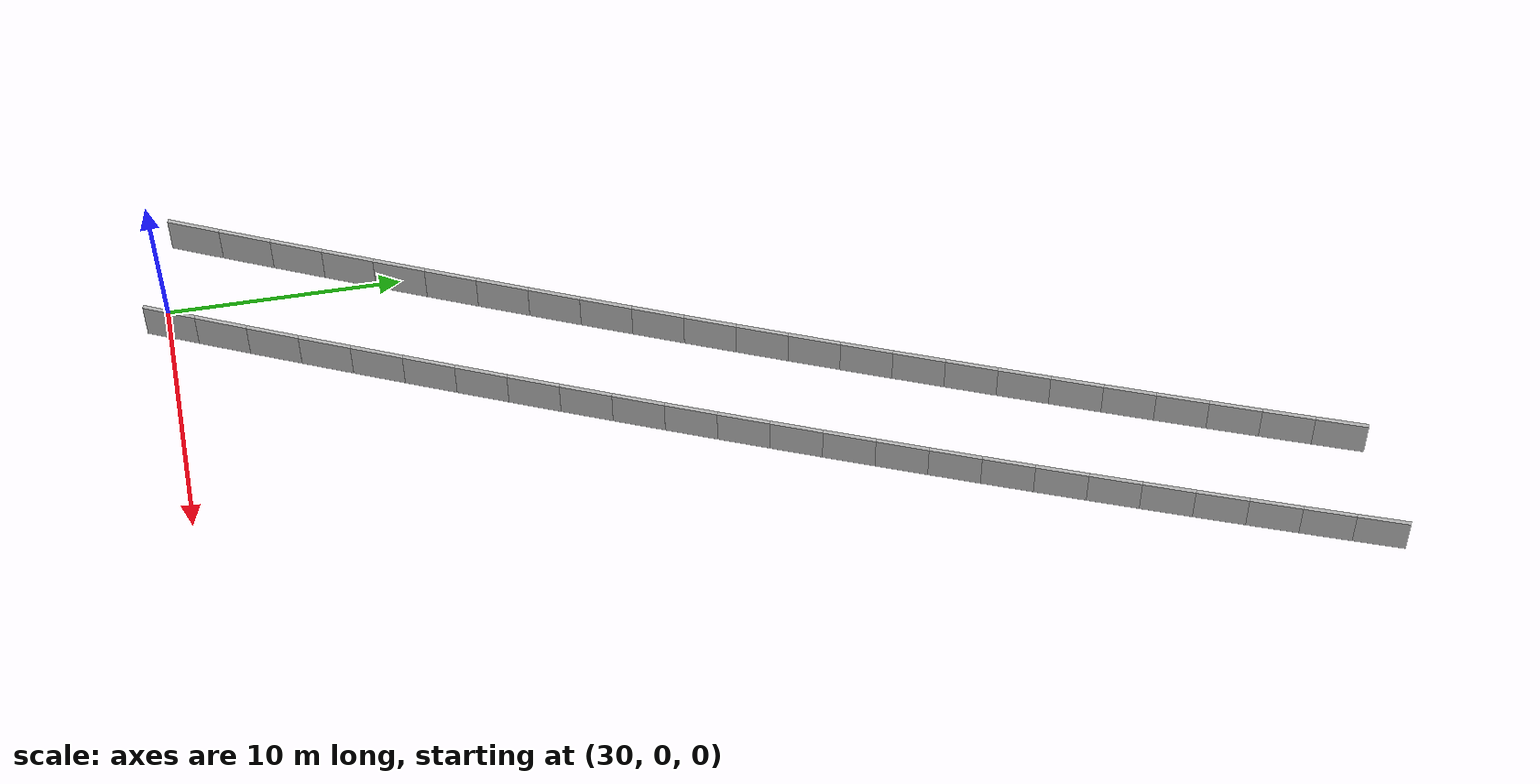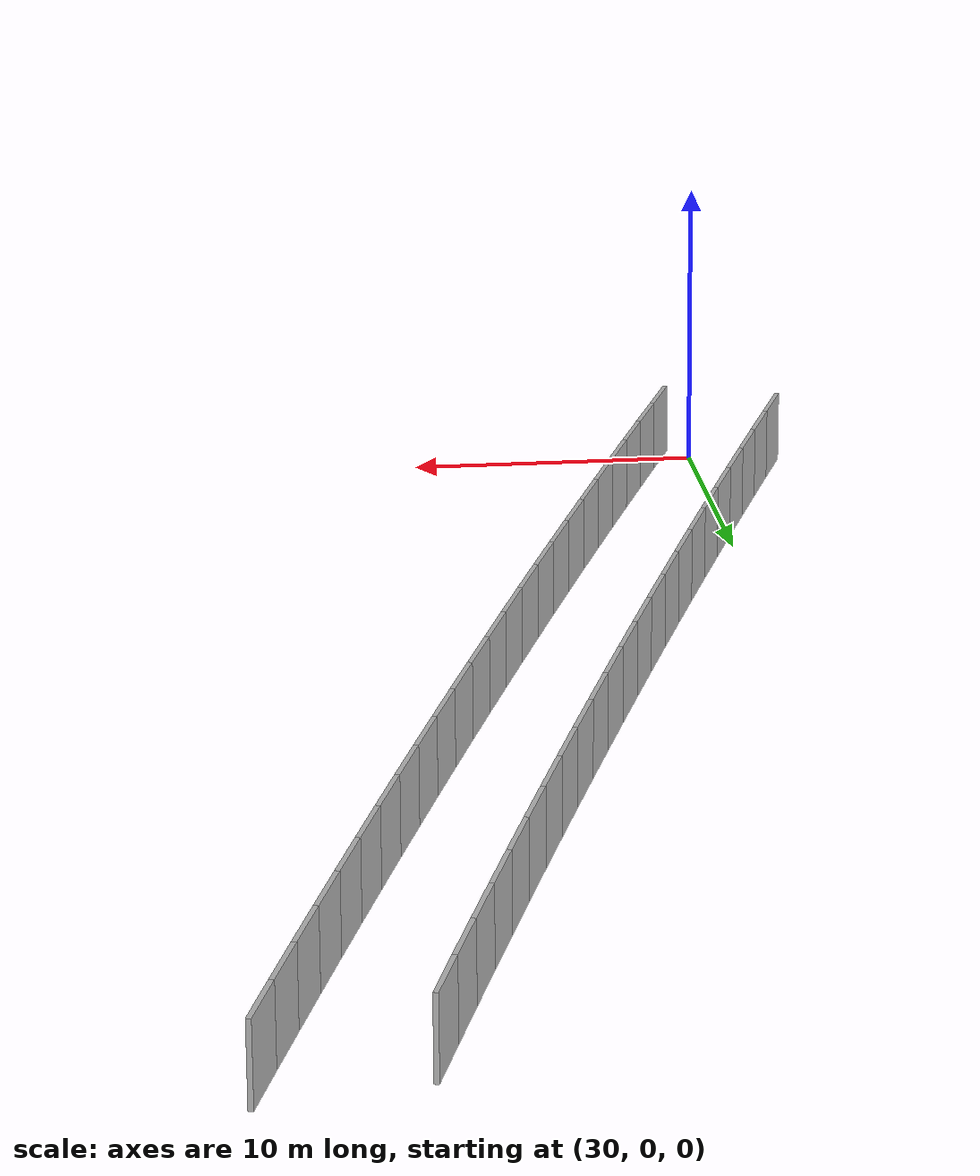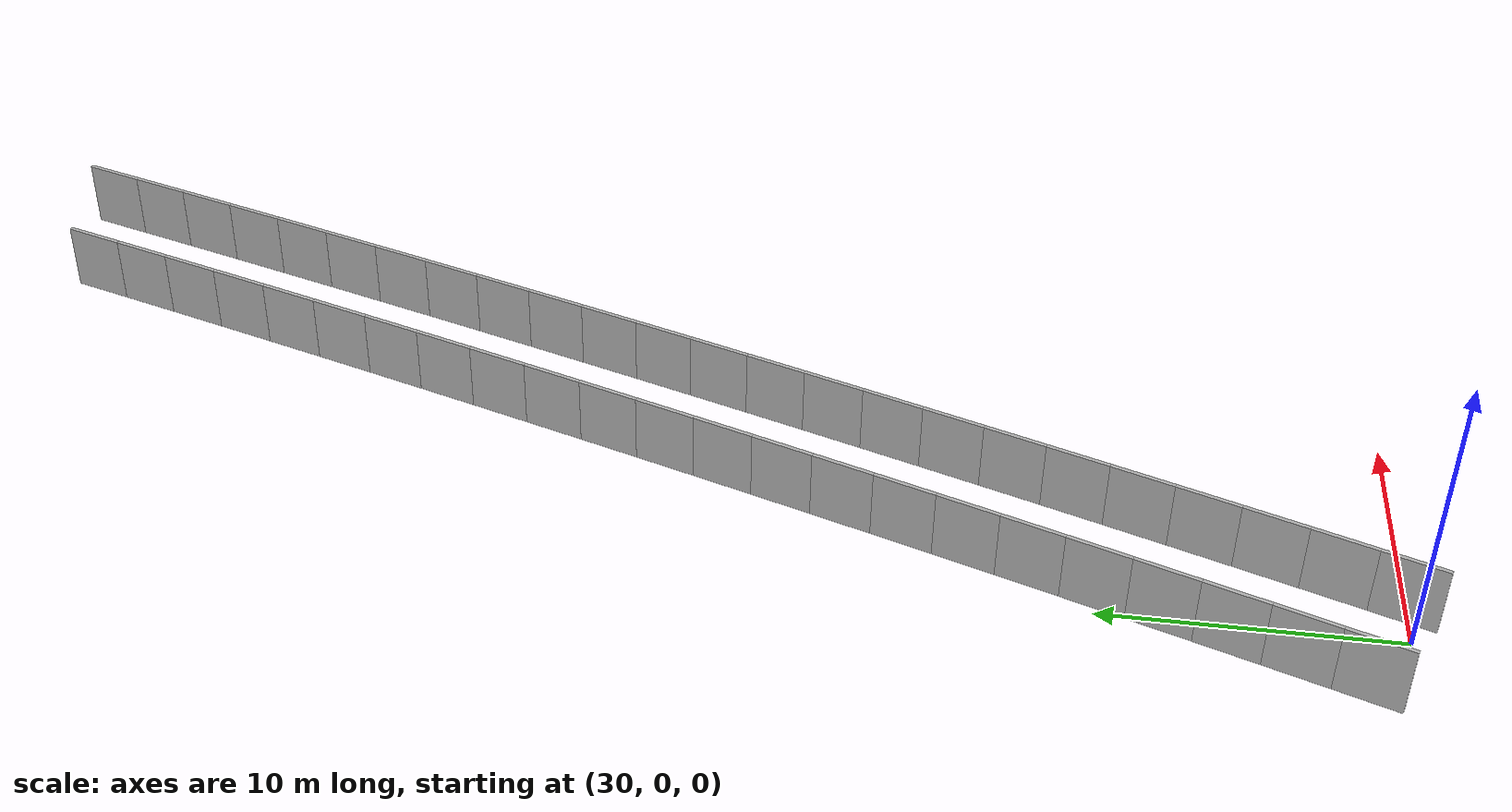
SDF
<?xml version="1.0" ?>
<sdf version="1.6">
  <model name="sps_4518">
    <pose frame="">0 0 0 0 -0 0</pose>
    <static>1</static>
    <self_collide>0</self_collide>
    <allow_auto_disable>0</allow_auto_disable>
    <link name="Wall4395">
      <kinematic>0</kinematic>
      <gravity>1</gravity>
      <self_collide>0</self_collide>
      <collision name="collision">
        <geometry>
          <box>
            <size>2.25456 0.15 2.5</size>
          </box>
        </geometry>
        <pose frame="">0 0 0 0 -0 0</pose>
      </collision>
      <visual name="visual">
        <geometry>
          <box>
            <size>2.25456 0.15 2.5</size>
          </box>
        </geometry>
        <pose frame="">0 0 0 0 -0 0</pose>
        <cast_shadows>1</cast_shadows>
        <transparency>0.0</transparency>
      </visual>
      <pose frame="">31.1479 0.140304 1.25 0 -0 1.20928</pose>
    </link>
    <link name="Wall4396">
      <kinematic>0</kinematic>
      <gravity>1</gravity>
      <self_collide>0</self_collide>
      <collision name="collision">
        <geometry>
          <box>
            <size>2.25454 0.15 2.5</size>
          </box>
        </geometry>
        <pose frame="">0 0 0 0 -0 0</pose>
      </collision>
      <visual name="visual">
        <geometry>
          <box>
            <size>2.25454 0.15 2.5</size>
          </box>
        </geometry>
        <pose frame="">0 0 0 0 -0 0</pose>
        <cast_shadows>1</cast_shadows>
        <transparency>0.0</transparency>
      </visual>
      <pose frame="">31.9427 2.25011 1.25 0 -0 1.21176</pose>
    </link>
    <link name="Wall4397">
      <kinematic>0</kinematic>
      <gravity>1</gravity>
      <self_collide>0</self_collide>
      <collision name="collision">
        <geometry>
          <box>
            <size>2.25475 0.15 2.5</size>
          </box>
        </geometry>
        <pose frame="">0 0 0 0 -0 0</pose>
      </collision>
      <visual name="visual">
        <geometry>
          <box>
            <size>2.25475 0.15 2.5</size>
          </box>
        </geometry>
        <pose frame="">0 0 0 0 -0 0</pose>
        <cast_shadows>1</cast_shadows>
        <transparency>0.0</transparency>
      </visual>
      <pose frame="">32.7325 4.36189 1.25 0 -0 1.21405</pose>
    </link>
    <link name="Wall4398">
      <kinematic>0</kinematic>
      <gravity>1</gravity>
      <self_collide>0</self_collide>
      <collision name="collision">
        <geometry>
          <box>
            <size>2.25466 0.15 2.5</size>
          </box>
        </geometry>
        <pose frame="">0 0 0 0 -0 0</pose>
      </collision>
      <visual name="visual">
        <geometry>
          <box>
            <size>2.25466 0.15 2.5</size>
          </box>
        </geometry>
        <pose frame="">0 0 0 0 -0 0</pose>
        <cast_shadows>1</cast_shadows>
        <transparency>0.0</transparency>
      </visual>
      <pose frame="">33.5174 6.4756 1.25 0 -0 1.21649</pose>
    </link>
    <link name="Wall4399">
      <kinematic>0</kinematic>
      <gravity>1</gravity>
      <self_collide>0</self_collide>
      <collision name="collision">
        <geometry>
          <box>
            <size>2.2544 0.15 2.5</size>
          </box>
        </geometry>
        <pose frame="">0 0 0 0 -0 0</pose>
      </collision>
      <visual name="visual">
        <geometry>
          <box>
            <size>2.2544 0.15 2.5</size>
          </box>
        </geometry>
        <pose frame="">0 0 0 0 -0 0</pose>
        <cast_shadows>1</cast_shadows>
        <transparency>0.0</transparency>
      </visual>
      <pose frame="">34.297 8.59102 1.25 0 -0 1.21884</pose>
    </link>
    <link name="Wall4400">
      <kinematic>0</kinematic>
      <gravity>1</gravity>
      <self_collide>0</self_collide>
      <collision name="collision">
        <geometry>
          <box>
            <size>2.25477 0.15 2.5</size>
          </box>
        </geometry>
        <pose frame="">0 0 0 0 -0 0</pose>
      </collision>
      <visual name="visual">
        <geometry>
          <box>
            <size>2.25477 0.15 2.5</size>
          </box>
        </geometry>
        <pose frame="">0 0 0 0 -0 0</pose>
        <cast_shadows>1</cast_shadows>
        <transparency>0.0</transparency>
      </visual>
      <pose frame="">35.0718 10.7083 1.25 0 -0 1.22115</pose>
    </link>
    <link name="Wall4401">
      <kinematic>0</kinematic>
      <gravity>1</gravity>
      <self_collide>0</self_collide>
      <collision name="collision">
        <geometry>
          <box>
            <size>2.25455 0.15 2.5</size>
          </box>
        </geometry>
        <pose frame="">0 0 0 0 -0 0</pose>
      </collision>
      <visual name="visual">
        <geometry>
          <box>
            <size>2.25455 0.15 2.5</size>
          </box>
        </geometry>
        <pose frame="">0 0 0 0 -0 0</pose>
        <cast_shadows>1</cast_shadows>
        <transparency>0.0</transparency>
      </visual>
      <pose frame="">35.8416 12.8275 1.25 0 -0 1.22357</pose>
    </link>
    <link name="Wall4402">
      <kinematic>0</kinematic>
      <gravity>1</gravity>
      <self_collide>0</self_collide>
      <collision name="collision">
        <geometry>
          <box>
            <size>2.25468 0.15 2.5</size>
          </box>
        </geometry>
        <pose frame="">0 0 0 0 -0 0</pose>
      </collision>
      <visual name="visual">
        <geometry>
          <box>
            <size>2.25468 0.15 2.5</size>
          </box>
        </geometry>
        <pose frame="">0 0 0 0 -0 0</pose>
        <cast_shadows>1</cast_shadows>
        <transparency>0.0</transparency>
      </visual>
      <pose frame="">36.6063 14.9485 1.25 0 -0 1.22603</pose>
    </link>
    <link name="Wall4403">
      <kinematic>0</kinematic>
      <gravity>1</gravity>
      <self_collide>0</self_collide>
      <collision name="collision">
        <geometry>
          <box>
            <size>2.25449 0.15 2.5</size>
          </box>
        </geometry>
        <pose frame="">0 0 0 0 -0 0</pose>
      </collision>
      <visual name="visual">
        <geometry>
          <box>
            <size>2.25449 0.15 2.5</size>
          </box>
        </geometry>
        <pose frame="">0 0 0 0 -0 0</pose>
        <cast_shadows>1</cast_shadows>
        <transparency>0.0</transparency>
      </visual>
      <pose frame="">37.3658 17.0713 1.25 0 -0 1.22836</pose>
    </link>
    <link name="Wall4404">
      <kinematic>0</kinematic>
      <gravity>1</gravity>
      <self_collide>0</self_collide>
      <collision name="collision">
        <geometry>
          <box>
            <size>2.2547 0.15 2.5</size>
          </box>
        </geometry>
        <pose frame="">0 0 0 0 -0 0</pose>
      </collision>
      <visual name="visual">
        <geometry>
          <box>
            <size>2.2547 0.15 2.5</size>
          </box>
        </geometry>
        <pose frame="">0 0 0 0 -0 0</pose>
        <cast_shadows>1</cast_shadows>
        <transparency>0.0</transparency>
      </visual>
      <pose frame="">38.1203 19.1959 1.25 0 -0 1.23078</pose>
    </link>
    <link name="Wall4405">
      <kinematic>0</kinematic>
      <gravity>1</gravity>
      <self_collide>0</self_collide>
      <collision name="collision">
        <geometry>
          <box>
            <size>2.25408 0.15 2.5</size>
          </box>
        </geometry>
        <pose frame="">0 0 0 0 -0 0</pose>
      </collision>
      <visual name="visual">
        <geometry>
          <box>
            <size>2.25408 0.15 2.5</size>
          </box>
        </geometry>
        <pose frame="">0 0 0 0 -0 0</pose>
        <cast_shadows>1</cast_shadows>
        <transparency>0.0</transparency>
      </visual>
      <pose frame="">38.8696 21.3221 1.25 0 -0 1.23318</pose>
    </link>
    <link name="Wall4406">
      <kinematic>0</kinematic>
      <gravity>1</gravity>
      <self_collide>0</self_collide>
      <collision name="collision">
        <geometry>
          <box>
            <size>2.25457 0.15 2.5</size>
          </box>
        </geometry>
        <pose frame="">0 0 0 0 -0 0</pose>
      </collision>
      <visual name="visual">
        <geometry>
          <box>
            <size>2.25457 0.15 2.5</size>
          </box>
        </geometry>
        <pose frame="">0 0 0 0 -0 0</pose>
        <cast_shadows>1</cast_shadows>
        <transparency>0.0</transparency>
      </visual>
      <pose frame="">39.6139 23.45 1.25 0 -0 1.23543</pose>
    </link>
    <link name="Wall4407">
      <kinematic>0</kinematic>
      <gravity>1</gravity>
      <self_collide>0</self_collide>
      <collision name="collision">
        <geometry>
          <box>
            <size>2.25481 0.15 2.5</size>
          </box>
        </geometry>
        <pose frame="">0 0 0 0 -0 0</pose>
      </collision>
      <visual name="visual">
        <geometry>
          <box>
            <size>2.25481 0.15 2.5</size>
          </box>
        </geometry>
        <pose frame="">0 0 0 0 -0 0</pose>
        <cast_shadows>1</cast_shadows>
        <transparency>0.0</transparency>
      </visual>
      <pose frame="">40.3533 25.58 1.25 0 -0 1.23793</pose>
    </link>
    <link name="Wall4408">
      <kinematic>0</kinematic>
      <gravity>1</gravity>
      <self_collide>0</self_collide>
      <collision name="collision">
        <geometry>
          <box>
            <size>2.2547 0.15 2.5</size>
          </box>
        </geometry>
        <pose frame="">0 0 0 0 -0 0</pose>
      </collision>
      <visual name="visual">
        <geometry>
          <box>
            <size>2.2547 0.15 2.5</size>
          </box>
        </geometry>
        <pose frame="">0 0 0 0 -0 0</pose>
        <cast_shadows>1</cast_shadows>
        <transparency>0.0</transparency>
      </visual>
      <pose frame="">41.0876 27.7118 1.25 0 -0 1.24015</pose>
    </link>
    <link name="Wall4409">
      <kinematic>0</kinematic>
      <gravity>1</gravity>
      <self_collide>0</self_collide>
      <collision name="collision">
        <geometry>
          <box>
            <size>2.25458 0.15 2.5</size>
          </box>
        </geometry>
        <pose frame="">0 0 0 0 -0 0</pose>
      </collision>
      <visual name="visual">
        <geometry>
          <box>
            <size>2.25458 0.15 2.5</size>
          </box>
        </geometry>
        <pose frame="">0 0 0 0 -0 0</pose>
        <cast_shadows>1</cast_shadows>
        <transparency>0.0</transparency>
      </visual>
      <pose frame="">41.817 29.8452 1.25 0 -0 1.24257</pose>
    </link>
    <link name="Wall4410">
      <kinematic>0</kinematic>
      <gravity>1</gravity>
      <self_collide>0</self_collide>
      <collision name="collision">
        <geometry>
          <box>
            <size>2.25459 0.15 2.5</size>
          </box>
        </geometry>
        <pose frame="">0 0 0 0 -0 0</pose>
      </collision>
      <visual name="visual">
        <geometry>
          <box>
            <size>2.25459 0.15 2.5</size>
          </box>
        </geometry>
        <pose frame="">0 0 0 0 -0 0</pose>
        <cast_shadows>1</cast_shadows>
        <transparency>0.0</transparency>
      </visual>
      <pose frame="">42.5413 31.9803 1.25 0 -0 1.245</pose>
    </link>
    <link name="Wall4411">
      <kinematic>0</kinematic>
      <gravity>1</gravity>
      <self_collide>0</self_collide>
      <collision name="collision">
        <geometry>
          <box>
            <size>2.25473 0.15 2.5</size>
          </box>
        </geometry>
        <pose frame="">0 0 0 0 -0 0</pose>
      </collision>
      <visual name="visual">
        <geometry>
          <box>
            <size>2.25473 0.15 2.5</size>
          </box>
        </geometry>
        <pose frame="">0 0 0 0 -0 0</pose>
        <cast_shadows>1</cast_shadows>
        <transparency>0.0</transparency>
      </visual>
      <pose frame="">43.2604 34.1172 1.25 0 -0 1.24736</pose>
    </link>
    <link name="Wall4412">
      <kinematic>0</kinematic>
      <gravity>1</gravity>
      <self_collide>0</self_collide>
      <collision name="collision">
        <geometry>
          <box>
            <size>2.25457 0.15 2.5</size>
          </box>
        </geometry>
        <pose frame="">0 0 0 0 -0 0</pose>
      </collision>
      <visual name="visual">
        <geometry>
          <box>
            <size>2.25457 0.15 2.5</size>
          </box>
        </geometry>
        <pose frame="">0 0 0 0 -0 0</pose>
        <cast_shadows>1</cast_shadows>
        <transparency>0.0</transparency>
      </visual>
      <pose frame="">43.9744 36.2558 1.25 0 -0 1.24979</pose>
    </link>
    <link name="Wall4413">
      <kinematic>0</kinematic>
      <gravity>1</gravity>
      <self_collide>0</self_collide>
      <collision name="collision">
        <geometry>
          <box>
            <size>2.25452 0.15 2.5</size>
          </box>
        </geometry>
        <pose frame="">0 0 0 0 -0 0</pose>
      </collision>
      <visual name="visual">
        <geometry>
          <box>
            <size>2.25452 0.15 2.5</size>
          </box>
        </geometry>
        <pose frame="">0 0 0 0 -0 0</pose>
        <cast_shadows>1</cast_shadows>
        <transparency>0.0</transparency>
      </visual>
      <pose frame="">44.6832 38.396 1.25 0 -0 1.25209</pose>
    </link>
    <link name="Wall4414">
      <kinematic>0</kinematic>
      <gravity>1</gravity>
      <self_collide>0</self_collide>
      <collision name="collision">
        <geometry>
          <box>
            <size>2.2548 0.15 2.5</size>
          </box>
        </geometry>
        <pose frame="">0 0 0 0 -0 0</pose>
      </collision>
      <visual name="visual">
        <geometry>
          <box>
            <size>2.2548 0.15 2.5</size>
          </box>
        </geometry>
        <pose frame="">0 0 0 0 -0 0</pose>
        <cast_shadows>1</cast_shadows>
        <transparency>0.0</transparency>
      </visual>
      <pose frame="">45.387 40.538 1.25 0 -0 1.25458</pose>
    </link>
    <link name="Wall4415">
      <kinematic>0</kinematic>
      <gravity>1</gravity>
      <self_collide>0</self_collide>
      <collision name="collision">
        <geometry>
          <box>
            <size>2.25466 0.15 2.5</size>
          </box>
        </geometry>
        <pose frame="">0 0 0 0 -0 0</pose>
      </collision>
      <visual name="visual">
        <geometry>
          <box>
            <size>2.25466 0.15 2.5</size>
          </box>
        </geometry>
        <pose frame="">0 0 0 0 -0 0</pose>
        <cast_shadows>1</cast_shadows>
        <transparency>0.0</transparency>
      </visual>
      <pose frame="">46.0858 42.6817 1.25 0 -0 1.25678</pose>
    </link>
    <link name="Wall4416">
      <kinematic>0</kinematic>
      <gravity>1</gravity>
      <self_collide>0</self_collide>
      <collision name="collision">
        <geometry>
          <box>
            <size>2.25457 0.15 2.5</size>
          </box>
        </geometry>
        <pose frame="">0 0 0 0 -0 0</pose>
      </collision>
      <visual name="visual">
        <geometry>
          <box>
            <size>2.25457 0.15 2.5</size>
          </box>
        </geometry>
        <pose frame="">0 0 0 0 -0 0</pose>
        <cast_shadows>1</cast_shadows>
        <transparency>0.0</transparency>
      </visual>
      <pose frame="">46.7797 44.8269 1.25 0 -0 1.25919</pose>
    </link>
    <link name="Wall4417">
      <kinematic>0</kinematic>
      <gravity>1</gravity>
      <self_collide>0</self_collide>
      <collision name="collision">
        <geometry>
          <box>
            <size>2.25465 0.15 2.5</size>
          </box>
        </geometry>
        <pose frame="">0 0 0 0 -0 0</pose>
      </collision>
      <visual name="visual">
        <geometry>
          <box>
            <size>2.25465 0.15 2.5</size>
          </box>
        </geometry>
        <pose frame="">0 0 0 0 -0 0</pose>
        <cast_shadows>1</cast_shadows>
        <transparency>0.0</transparency>
      </visual>
      <pose frame="">47.4683 46.9738 1.25 0 -0 1.26165</pose>
    </link>
    <link name="Wall4418">
      <kinematic>0</kinematic>
      <gravity>1</gravity>
      <self_collide>0</self_collide>
      <collision name="collision">
        <geometry>
          <box>
            <size>2.25465 0.15 2.5</size>
          </box>
        </geometry>
        <pose frame="">0 0 0 0 -0 0</pose>
      </collision>
      <visual name="visual">
        <geometry>
          <box>
            <size>2.25465 0.15 2.5</size>
          </box>
        </geometry>
        <pose frame="">0 0 0 0 -0 0</pose>
        <cast_shadows>1</cast_shadows>
        <transparency>0.0</transparency>
      </visual>
      <pose frame="">48.1516 49.1224 1.25 0 -0 1.26406</pose>
    </link>
    <link name="Wall6120">
      <kinematic>0</kinematic>
      <gravity>1</gravity>
      <self_collide>0</self_collide>
      <collision name="collision">
        <geometry>
          <box>
            <size>2.2449 0.15 2.5</size>
          </box>
        </geometry>
        <pose frame="">0 0 0 0 -0 0</pose>
      </collision>
      <visual name="visual">
        <geometry>
          <box>
            <size>2.2449 0.15 2.5</size>
          </box>
        </geometry>
        <pose frame="">0 0 0 0 -0 0</pose>
        <cast_shadows>1</cast_shadows>
        <transparency>0.0</transparency>
      </visual>
      <pose frame="">27.2761 1.60417 1.25 0 -0 1.20928</pose>
    </link>
    <link name="Wall6121">
      <kinematic>0</kinematic>
      <gravity>1</gravity>
      <self_collide>0</self_collide>
      <collision name="collision">
        <geometry>
          <box>
            <size>2.24485 0.15 2.5</size>
          </box>
        </geometry>
        <pose frame="">0 0 0 0 -0 0</pose>
      </collision>
      <visual name="visual">
        <geometry>
          <box>
            <size>2.24485 0.15 2.5</size>
          </box>
        </geometry>
        <pose frame="">0 0 0 0 -0 0</pose>
        <cast_shadows>1</cast_shadows>
        <transparency>0.0</transparency>
      </visual>
      <pose frame="">28.0676 3.70488 1.25 0 -0 1.21165</pose>
    </link>
    <link name="Wall6122">
      <kinematic>0</kinematic>
      <gravity>1</gravity>
      <self_collide>0</self_collide>
      <collision name="collision">
        <geometry>
          <box>
            <size>2.24486 0.15 2.5</size>
          </box>
        </geometry>
        <pose frame="">0 0 0 0 -0 0</pose>
      </collision>
      <visual name="visual">
        <geometry>
          <box>
            <size>2.24486 0.15 2.5</size>
          </box>
        </geometry>
        <pose frame="">0 0 0 0 -0 0</pose>
        <cast_shadows>1</cast_shadows>
        <transparency>0.0</transparency>
      </visual>
      <pose frame="">28.854 5.80748 1.25 0 -0 1.21412</pose>
    </link>
    <link name="Wall6123">
      <kinematic>0</kinematic>
      <gravity>1</gravity>
      <self_collide>0</self_collide>
      <collision name="collision">
        <geometry>
          <box>
            <size>2.2449 0.15 2.5</size>
          </box>
        </geometry>
        <pose frame="">0 0 0 0 -0 0</pose>
      </collision>
      <visual name="visual">
        <geometry>
          <box>
            <size>2.2449 0.15 2.5</size>
          </box>
        </geometry>
        <pose frame="">0 0 0 0 -0 0</pose>
        <cast_shadows>1</cast_shadows>
        <transparency>0.0</transparency>
      </visual>
      <pose frame="">29.6354 7.91197 1.25 0 -0 1.21642</pose>
    </link>
    <link name="Wall6124">
      <kinematic>0</kinematic>
      <gravity>1</gravity>
      <self_collide>0</self_collide>
      <collision name="collision">
        <geometry>
          <box>
            <size>2.24482 0.15 2.5</size>
          </box>
        </geometry>
        <pose frame="">0 0 0 0 -0 0</pose>
      </collision>
      <visual name="visual">
        <geometry>
          <box>
            <size>2.24482 0.15 2.5</size>
          </box>
        </geometry>
        <pose frame="">0 0 0 0 -0 0</pose>
        <cast_shadows>1</cast_shadows>
        <transparency>0.0</transparency>
      </visual>
      <pose frame="">30.4118 10.0183 1.25 0 -0 1.21887</pose>
    </link>
    <link name="Wall6125">
      <kinematic>0</kinematic>
      <gravity>1</gravity>
      <self_collide>0</self_collide>
      <collision name="collision">
        <geometry>
          <box>
            <size>2.2447 0.15 2.5</size>
          </box>
        </geometry>
        <pose frame="">0 0 0 0 -0 0</pose>
      </collision>
      <visual name="visual">
        <geometry>
          <box>
            <size>2.2447 0.15 2.5</size>
          </box>
        </geometry>
        <pose frame="">0 0 0 0 -0 0</pose>
        <cast_shadows>1</cast_shadows>
        <transparency>0.0</transparency>
      </visual>
      <pose frame="">31.183 12.1264 1.25 0 -0 1.22131</pose>
    </link>
    <link name="Wall6126">
      <kinematic>0</kinematic>
      <gravity>1</gravity>
      <self_collide>0</self_collide>
      <collision name="collision">
        <geometry>
          <box>
            <size>2.24478 0.15 2.5</size>
          </box>
        </geometry>
        <pose frame="">0 0 0 0 -0 0</pose>
      </collision>
      <visual name="visual">
        <geometry>
          <box>
            <size>2.24478 0.15 2.5</size>
          </box>
        </geometry>
        <pose frame="">0 0 0 0 -0 0</pose>
        <cast_shadows>1</cast_shadows>
        <transparency>0.0</transparency>
      </visual>
      <pose frame="">31.9493 14.2363 1.25 0 -0 1.22352</pose>
    </link>
    <link name="Wall6127">
      <kinematic>0</kinematic>
      <gravity>1</gravity>
      <self_collide>0</self_collide>
      <collision name="collision">
        <geometry>
          <box>
            <size>2.24475 0.15 2.5</size>
          </box>
        </geometry>
        <pose frame="">0 0 0 0 -0 0</pose>
      </collision>
      <visual name="visual">
        <geometry>
          <box>
            <size>2.24475 0.15 2.5</size>
          </box>
        </geometry>
        <pose frame="">0 0 0 0 -0 0</pose>
        <cast_shadows>1</cast_shadows>
        <transparency>0.0</transparency>
      </visual>
      <pose frame="">32.7107 16.348 1.25 0 -0 1.22597</pose>
    </link>
    <link name="Wall6128">
      <kinematic>0</kinematic>
      <gravity>1</gravity>
      <self_collide>0</self_collide>
      <collision name="collision">
        <geometry>
          <box>
            <size>2.24484 0.15 2.5</size>
          </box>
        </geometry>
        <pose frame="">0 0 0 0 -0 0</pose>
      </collision>
      <visual name="visual">
        <geometry>
          <box>
            <size>2.24484 0.15 2.5</size>
          </box>
        </geometry>
        <pose frame="">0 0 0 0 -0 0</pose>
        <cast_shadows>1</cast_shadows>
        <transparency>0.0</transparency>
      </visual>
      <pose frame="">33.4668 18.4616 1.25 0 -0 1.22844</pose>
    </link>
    <link name="Wall6129">
      <kinematic>0</kinematic>
      <gravity>1</gravity>
      <self_collide>0</self_collide>
      <collision name="collision">
        <geometry>
          <box>
            <size>2.24437 0.15 2.5</size>
          </box>
        </geometry>
        <pose frame="">0 0 0 0 -0 0</pose>
      </collision>
      <visual name="visual">
        <geometry>
          <box>
            <size>2.24437 0.15 2.5</size>
          </box>
        </geometry>
        <pose frame="">0 0 0 0 -0 0</pose>
        <cast_shadows>1</cast_shadows>
        <transparency>0.0</transparency>
      </visual>
      <pose frame="">34.2179 20.5768 1.25 0 -0 1.23074</pose>
    </link>
    <link name="Wall6130">
      <kinematic>0</kinematic>
      <gravity>1</gravity>
      <self_collide>0</self_collide>
      <collision name="collision">
        <geometry>
          <box>
            <size>2.24472 0.15 2.5</size>
          </box>
        </geometry>
        <pose frame="">0 0 0 0 -0 0</pose>
      </collision>
      <visual name="visual">
        <geometry>
          <box>
            <size>2.24472 0.15 2.5</size>
          </box>
        </geometry>
        <pose frame="">0 0 0 0 -0 0</pose>
        <cast_shadows>1</cast_shadows>
        <transparency>0.0</transparency>
      </visual>
      <pose frame="">34.964 22.6937 1.25 0 -0 1.23316</pose>
    </link>
    <link name="Wall6131">
      <kinematic>0</kinematic>
      <gravity>1</gravity>
      <self_collide>0</self_collide>
      <collision name="collision">
        <geometry>
          <box>
            <size>2.24459 0.15 2.5</size>
          </box>
        </geometry>
        <pose frame="">0 0 0 0 -0 0</pose>
      </collision>
      <visual name="visual">
        <geometry>
          <box>
            <size>2.24459 0.15 2.5</size>
          </box>
        </geometry>
        <pose frame="">0 0 0 0 -0 0</pose>
        <cast_shadows>1</cast_shadows>
        <transparency>0.0</transparency>
      </visual>
      <pose frame="">35.7052 24.8125 1.25 0 -0 1.23547</pose>
    </link>
    <link name="Wall6132">
      <kinematic>0</kinematic>
      <gravity>1</gravity>
      <self_collide>0</self_collide>
      <collision name="collision">
        <geometry>
          <box>
            <size>2.24495 0.15 2.5</size>
          </box>
        </geometry>
        <pose frame="">0 0 0 0 -0 0</pose>
      </collision>
      <visual name="visual">
        <geometry>
          <box>
            <size>2.24495 0.15 2.5</size>
          </box>
        </geometry>
        <pose frame="">0 0 0 0 -0 0</pose>
        <cast_shadows>1</cast_shadows>
        <transparency>0.0</transparency>
      </visual>
      <pose frame="">36.4414 26.9331 1.25 0 -0 1.23783</pose>
    </link>
    <link name="Wall6133">
      <kinematic>0</kinematic>
      <gravity>1</gravity>
      <self_collide>0</self_collide>
      <collision name="collision">
        <geometry>
          <box>
            <size>2.24487 0.15 2.5</size>
          </box>
        </geometry>
        <pose frame="">0 0 0 0 -0 0</pose>
      </collision>
      <visual name="visual">
        <geometry>
          <box>
            <size>2.24487 0.15 2.5</size>
          </box>
        </geometry>
        <pose frame="">0 0 0 0 -0 0</pose>
        <cast_shadows>1</cast_shadows>
        <transparency>0.0</transparency>
      </visual>
      <pose frame="">37.1725 29.0556 1.25 0 -0 1.24026</pose>
    </link>
    <link name="Wall6134">
      <kinematic>0</kinematic>
      <gravity>1</gravity>
      <self_collide>0</self_collide>
      <collision name="collision">
        <geometry>
          <box>
            <size>2.24466 0.15 2.5</size>
          </box>
        </geometry>
        <pose frame="">0 0 0 0 -0 0</pose>
      </collision>
      <visual name="visual">
        <geometry>
          <box>
            <size>2.24466 0.15 2.5</size>
          </box>
        </geometry>
        <pose frame="">0 0 0 0 -0 0</pose>
        <cast_shadows>1</cast_shadows>
        <transparency>0.0</transparency>
      </visual>
      <pose frame="">37.8986 31.1797 1.25 0 -0 1.24255</pose>
    </link>
    <link name="Wall6135">
      <kinematic>0</kinematic>
      <gravity>1</gravity>
      <self_collide>0</self_collide>
      <collision name="collision">
        <geometry>
          <box>
            <size>2.24488 0.15 2.5</size>
          </box>
        </geometry>
        <pose frame="">0 0 0 0 -0 0</pose>
      </collision>
      <visual name="visual">
        <geometry>
          <box>
            <size>2.24488 0.15 2.5</size>
          </box>
        </geometry>
        <pose frame="">0 0 0 0 -0 0</pose>
        <cast_shadows>1</cast_shadows>
        <transparency>0.0</transparency>
      </visual>
      <pose frame="">38.6197 33.3055 1.25 0 -0 1.24506</pose>
    </link>
    <link name="Wall6136">
      <kinematic>0</kinematic>
      <gravity>1</gravity>
      <self_collide>0</self_collide>
      <collision name="collision">
        <geometry>
          <box>
            <size>2.24475 0.15 2.5</size>
          </box>
        </geometry>
        <pose frame="">0 0 0 0 -0 0</pose>
      </collision>
      <visual name="visual">
        <geometry>
          <box>
            <size>2.24475 0.15 2.5</size>
          </box>
        </geometry>
        <pose frame="">0 0 0 0 -0 0</pose>
        <cast_shadows>1</cast_shadows>
        <transparency>0.0</transparency>
      </visual>
      <pose frame="">39.3356 35.4331 1.25 0 -0 1.24736</pose>
    </link>
    <link name="Wall6137">
      <kinematic>0</kinematic>
      <gravity>1</gravity>
      <self_collide>0</self_collide>
      <collision name="collision">
        <geometry>
          <box>
            <size>2.245 0.15 2.5</size>
          </box>
        </geometry>
        <pose frame="">0 0 0 0 -0 0</pose>
      </collision>
      <visual name="visual">
        <geometry>
          <box>
            <size>2.245 0.15 2.5</size>
          </box>
        </geometry>
        <pose frame="">0 0 0 0 -0 0</pose>
        <cast_shadows>1</cast_shadows>
        <transparency>0.0</transparency>
      </visual>
      <pose frame="">40.0466 37.5624 1.25 0 -0 1.24969</pose>
    </link>
    <link name="Wall6138">
      <kinematic>0</kinematic>
      <gravity>1</gravity>
      <self_collide>0</self_collide>
      <collision name="collision">
        <geometry>
          <box>
            <size>2.24458 0.15 2.5</size>
          </box>
        </geometry>
        <pose frame="">0 0 0 0 -0 0</pose>
      </collision>
      <visual name="visual">
        <geometry>
          <box>
            <size>2.24458 0.15 2.5</size>
          </box>
        </geometry>
        <pose frame="">0 0 0 0 -0 0</pose>
        <cast_shadows>1</cast_shadows>
        <transparency>0.0</transparency>
      </visual>
      <pose frame="">40.7524 39.6933 1.25 0 -0 1.25215</pose>
    </link>
    <link name="Wall6139">
      <kinematic>0</kinematic>
      <gravity>1</gravity>
      <self_collide>0</self_collide>
      <collision name="collision">
        <geometry>
          <box>
            <size>2.24478 0.15 2.5</size>
          </box>
        </geometry>
        <pose frame="">0 0 0 0 -0 0</pose>
      </collision>
      <visual name="visual">
        <geometry>
          <box>
            <size>2.24478 0.15 2.5</size>
          </box>
        </geometry>
        <pose frame="">0 0 0 0 -0 0</pose>
        <cast_shadows>1</cast_shadows>
        <transparency>0.0</transparency>
      </visual>
      <pose frame="">41.4532 41.8258 1.25 0 -0 1.25441</pose>
    </link>
    <link name="Wall6140">
      <kinematic>0</kinematic>
      <gravity>1</gravity>
      <self_collide>0</self_collide>
      <collision name="collision">
        <geometry>
          <box>
            <size>2.24484 0.15 2.5</size>
          </box>
        </geometry>
        <pose frame="">0 0 0 0 -0 0</pose>
      </collision>
      <visual name="visual">
        <geometry>
          <box>
            <size>2.24484 0.15 2.5</size>
          </box>
        </geometry>
        <pose frame="">0 0 0 0 -0 0</pose>
        <cast_shadows>1</cast_shadows>
        <transparency>0.0</transparency>
      </visual>
      <pose frame="">42.1489 43.9601 1.25 0 -0 1.25696</pose>
    </link>
    <link name="Wall6141">
      <kinematic>0</kinematic>
      <gravity>1</gravity>
      <self_collide>0</self_collide>
      <collision name="collision">
        <geometry>
          <box>
            <size>2.24477 0.15 2.5</size>
          </box>
        </geometry>
        <pose frame="">0 0 0 0 -0 0</pose>
      </collision>
      <visual name="visual">
        <geometry>
          <box>
            <size>2.24477 0.15 2.5</size>
          </box>
        </geometry>
        <pose frame="">0 0 0 0 -0 0</pose>
        <cast_shadows>1</cast_shadows>
        <transparency>0.0</transparency>
      </visual>
      <pose frame="">42.8396 46.096 1.25 0 -0 1.25918</pose>
    </link>
    <link name="Wall6142">
      <kinematic>0</kinematic>
      <gravity>1</gravity>
      <self_collide>0</self_collide>
      <collision name="collision">
        <geometry>
          <box>
            <size>2.24479 0.15 2.5</size>
          </box>
        </geometry>
        <pose frame="">0 0 0 0 -0 0</pose>
      </collision>
      <visual name="visual">
        <geometry>
          <box>
            <size>2.24479 0.15 2.5</size>
          </box>
        </geometry>
        <pose frame="">0 0 0 0 -0 0</pose>
        <cast_shadows>1</cast_shadows>
        <transparency>0.0</transparency>
      </visual>
      <pose frame="">43.5252 48.2335 1.25 0 -0 1.26164</pose>
    </link>
  </model>
</sdf>
